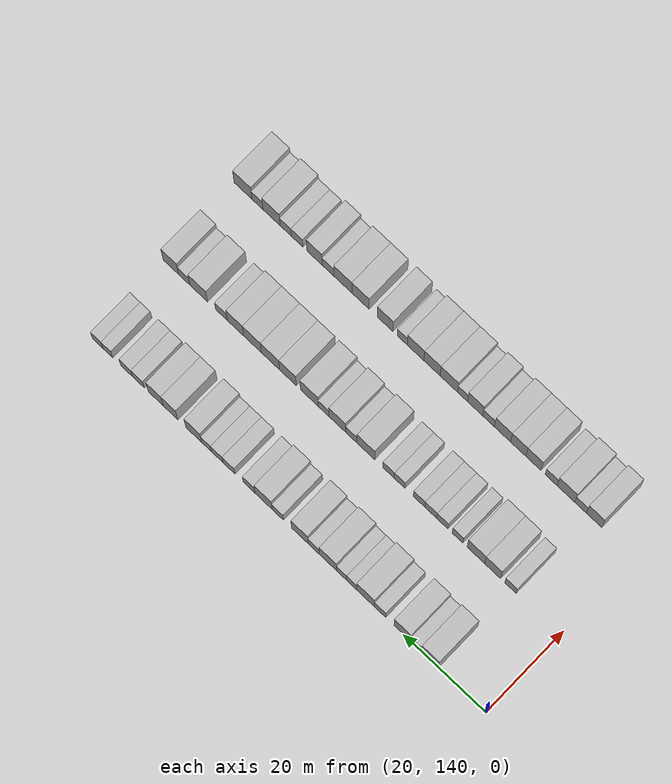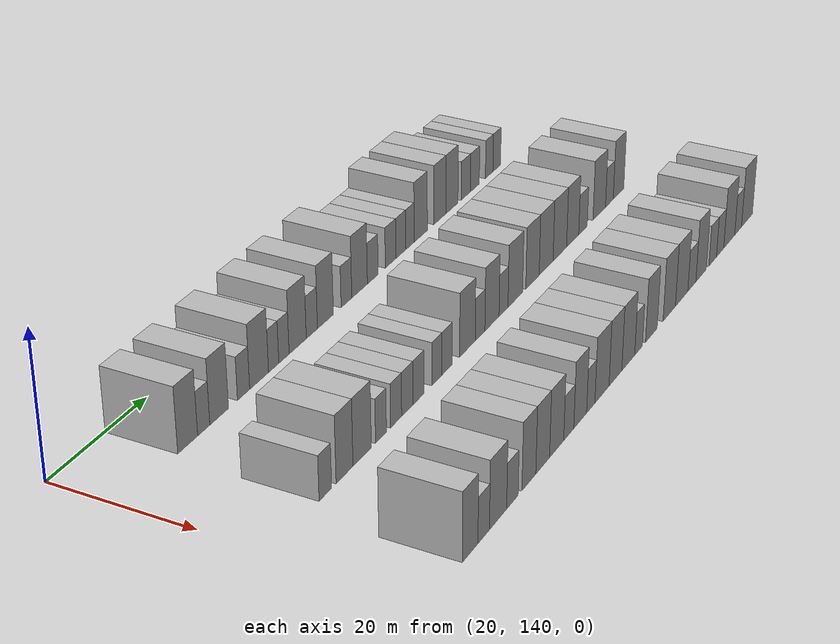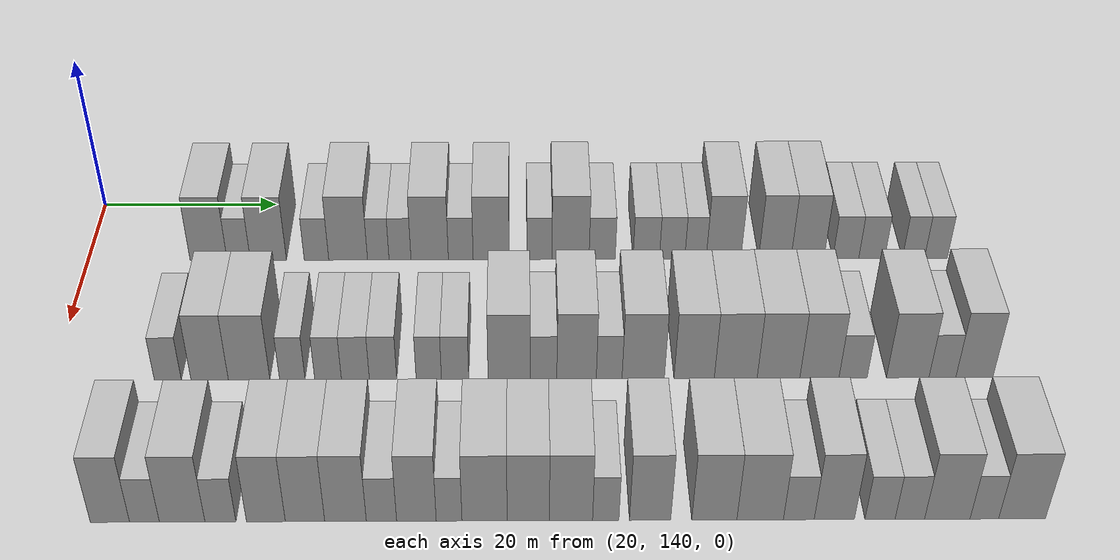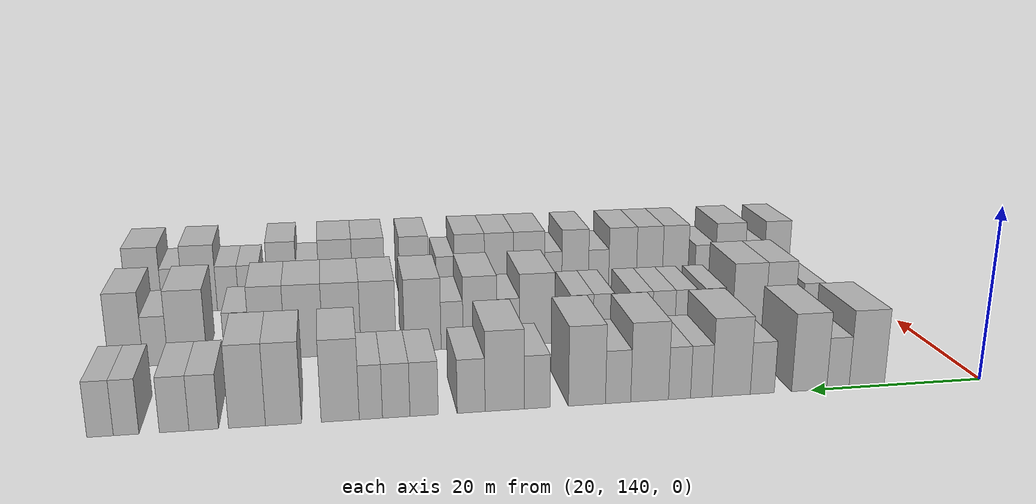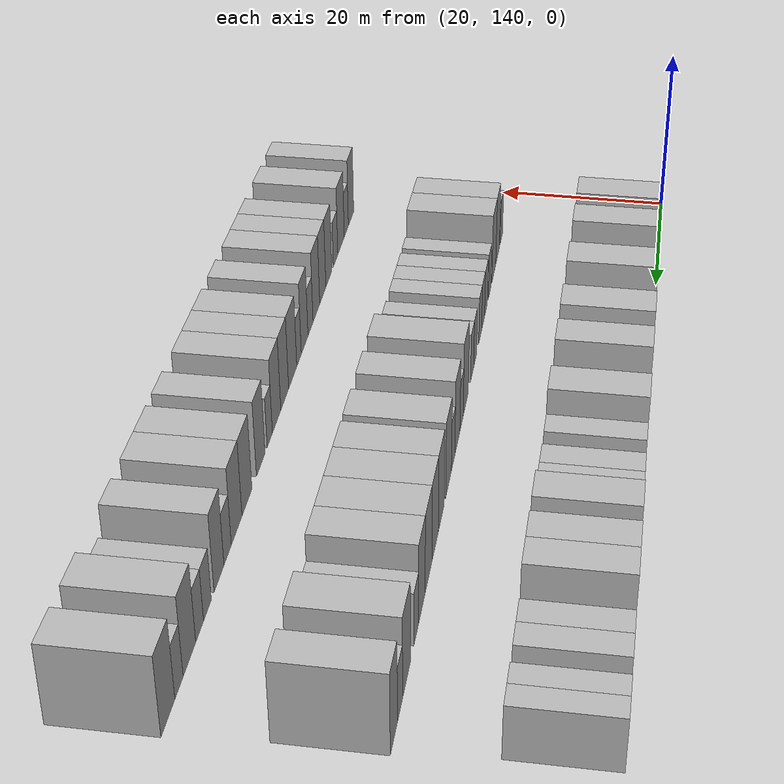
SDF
<sdf version="1.6">
 <world name="default">
  <model name="building_95">
   <static>1</static>
   <pose>25.0000 153.5208 0 0.000000 0.000000 0.000000</pose>
   <link name="link">
    <pose>0 0 4.50 0 0 0</pose>
    <collision name="collision"><geometry><box><size>10.0000 4.1597 9.0000</size></box></geometry></collision>
    <visual name="visual">
     <cast_shadows>0</cast_shadows>
     <geometry><box><size>10.0000 4.1597 9.0000</size></box></geometry>
     <material>
      <script>
       <uri>model://HANNAS_wall/materials/scripts</uri>
       <uri>model://HANNAS_wall/materials/textures</uri>
       <name>vrc/HANNAS_wall</name>
      </script>
     </material>
    </visual>
   </link>
  </model>
  <model name="building_96">
   <static>1</static>
   <pose>25.0000 156.9031 0 0.000000 0.000000 0.000000</pose>
   <link name="link">
    <pose>0 0 3.00 0 0 0</pose>
    <collision name="collision"><geometry><box><size>10.0000 2.6050 6.0000</size></box></geometry></collision>
    <visual name="visual">
     <cast_shadows>0</cast_shadows>
     <geometry><box><size>10.0000 2.6050 6.0000</size></box></geometry>
     <material>
      <script>
       <uri>model://HANNAS_wall/materials/scripts</uri>
       <uri>model://HANNAS_wall/materials/textures</uri>
       <name>vrc/HANNAS_wall</name>
      </script>
     </material>
    </visual>
   </link>
  </model>
  <model name="building_97">
   <static>1</static>
   <pose>25.0000 160.2367 0 0.000000 0.000000 0.000000</pose>
   <link name="link">
    <pose>0 0 4.50 0 0 0</pose>
    <collision name="collision"><geometry><box><size>10.0000 4.0622 9.0000</size></box></geometry></collision>
    <visual name="visual">
     <cast_shadows>0</cast_shadows>
     <geometry><box><size>10.0000 4.0622 9.0000</size></box></geometry>
     <material>
      <script>
       <uri>model://HANNAS_wall/materials/scripts</uri>
       <uri>model://HANNAS_wall/materials/textures</uri>
       <name>vrc/HANNAS_wall</name>
      </script>
     </material>
    </visual>
   </link>
  </model>
  <model name="building_98">
   <static>1</static>
   <pose>25.0000 165.6447 0 0.000000 0.000000 0.000000</pose>
   <link name="link">
    <pose>0 0 3.00 0 0 0</pose>
    <collision name="collision"><geometry><box><size>10.0000 2.7539 6.0000</size></box></geometry></collision>
    <visual name="visual">
     <cast_shadows>0</cast_shadows>
     <geometry><box><size>10.0000 2.7539 6.0000</size></box></geometry>
     <material>
      <script>
       <uri>model://HANNAS_wall/materials/scripts</uri>
       <uri>model://HANNAS_wall/materials/textures</uri>
       <name>vrc/HANNAS_wall</name>
      </script>
     </material>
    </visual>
   </link>
  </model>
  <model name="building_99">
   <static>1</static>
   <pose>25.0000 169.2007 0 0.000000 0.000000 0.000000</pose>
   <link name="link">
    <pose>0 0 4.50 0 0 0</pose>
    <collision name="collision"><geometry><box><size>10.0000 4.3581 9.0000</size></box></geometry></collision>
    <visual name="visual">
     <cast_shadows>0</cast_shadows>
     <geometry><box><size>10.0000 4.3581 9.0000</size></box></geometry>
     <material>
      <script>
       <uri>model://HANNAS_wall/materials/scripts</uri>
       <uri>model://HANNAS_wall/materials/textures</uri>
       <name>vrc/HANNAS_wall</name>
      </script>
     </material>
    </visual>
   </link>
  </model>
  <model name="building_100">
   <static>1</static>
   <pose>25.0000 172.5883 0 0.000000 0.000000 0.000000</pose>
   <link name="link">
    <pose>0 0 3.00 0 0 0</pose>
    <collision name="collision"><geometry><box><size>10.0000 2.4170 6.0000</size></box></geometry></collision>
    <visual name="visual">
     <cast_shadows>0</cast_shadows>
     <geometry><box><size>10.0000 2.4170 6.0000</size></box></geometry>
     <material>
      <script>
       <uri>model://HANNAS_wall/materials/scripts</uri>
       <uri>model://HANNAS_wall/materials/textures</uri>
       <name>vrc/HANNAS_wall</name>
      </script>
     </material>
    </visual>
   </link>
  </model>
  <model name="building_101">
   <static>1</static>
   <pose>25.0000 175.0313 0 0.000000 0.000000 0.000000</pose>
   <link name="link">
    <pose>0 0 3.00 0 0 0</pose>
    <collision name="collision"><geometry><box><size>10.0000 2.4691 6.0000</size></box></geometry></collision>
    <visual name="visual">
     <cast_shadows>0</cast_shadows>
     <geometry><box><size>10.0000 2.4691 6.0000</size></box></geometry>
     <material>
      <script>
       <uri>model://HANNAS_wall/materials/scripts</uri>
       <uri>model://HANNAS_wall/materials/textures</uri>
       <name>vrc/HANNAS_wall</name>
      </script>
     </material>
    </visual>
   </link>
  </model>
  <model name="building_102">
   <static>1</static>
   <pose>25.0000 178.3652 0 0.000000 0.000000 0.000000</pose>
   <link name="link">
    <pose>0 0 4.50 0 0 0</pose>
    <collision name="collision"><geometry><box><size>10.0000 4.1987 9.0000</size></box></geometry></collision>
    <visual name="visual">
     <cast_shadows>0</cast_shadows>
     <geometry><box><size>10.0000 4.1987 9.0000</size></box></geometry>
     <material>
      <script>
       <uri>model://HANNAS_wall/materials/scripts</uri>
       <uri>model://HANNAS_wall/materials/textures</uri>
       <name>vrc/HANNAS_wall</name>
      </script>
     </material>
    </visual>
   </link>
  </model>
  <model name="building_103">
   <static>1</static>
   <pose>25.0000 181.8591 0 0.000000 0.000000 0.000000</pose>
   <link name="link">
    <pose>0 0 3.00 0 0 0</pose>
    <collision name="collision"><geometry><box><size>10.0000 2.7890 6.0000</size></box></geometry></collision>
    <visual name="visual">
     <cast_shadows>0</cast_shadows>
     <geometry><box><size>10.0000 2.7890 6.0000</size></box></geometry>
     <material>
      <script>
       <uri>model://HANNAS_wall/materials/scripts</uri>
       <uri>model://HANNAS_wall/materials/textures</uri>
       <name>vrc/HANNAS_wall</name>
      </script>
     </material>
    </visual>
   </link>
  </model>
  <model name="building_104">
   <static>1</static>
   <pose>25.0000 185.2773 0 0.000000 0.000000 0.000000</pose>
   <link name="link">
    <pose>0 0 4.50 0 0 0</pose>
    <collision name="collision"><geometry><box><size>10.0000 4.0475 9.0000</size></box></geometry></collision>
    <visual name="visual">
     <cast_shadows>0</cast_shadows>
     <geometry><box><size>10.0000 4.0475 9.0000</size></box></geometry>
     <material>
      <script>
       <uri>model://HANNAS_wall/materials/scripts</uri>
       <uri>model://HANNAS_wall/materials/textures</uri>
       <name>vrc/HANNAS_wall</name>
      </script>
     </material>
    </visual>
   </link>
  </model>
  <model name="building_105">
   <static>1</static>
   <pose>25.0000 190.6964 0 0.000000 0.000000 0.000000</pose>
   <link name="link">
    <pose>0 0 3.00 0 0 0</pose>
    <collision name="collision"><geometry><box><size>10.0000 2.7906 6.0000</size></box></geometry></collision>
    <visual name="visual">
     <cast_shadows>0</cast_shadows>
     <geometry><box><size>10.0000 2.7906 6.0000</size></box></geometry>
     <material>
      <script>
       <uri>model://HANNAS_wall/materials/scripts</uri>
       <uri>model://HANNAS_wall/materials/textures</uri>
       <name>vrc/HANNAS_wall</name>
      </script>
     </material>
    </visual>
   </link>
  </model>
  <model name="building_106">
   <static>1</static>
   <pose>25.0000 194.1855 0 0.000000 0.000000 0.000000</pose>
   <link name="link">
    <pose>0 0 4.50 0 0 0</pose>
    <collision name="collision"><geometry><box><size>10.0000 4.1876 9.0000</size></box></geometry></collision>
    <visual name="visual">
     <cast_shadows>0</cast_shadows>
     <geometry><box><size>10.0000 4.1876 9.0000</size></box></geometry>
     <material>
      <script>
       <uri>model://HANNAS_wall/materials/scripts</uri>
       <uri>model://HANNAS_wall/materials/textures</uri>
       <name>vrc/HANNAS_wall</name>
      </script>
     </material>
    </visual>
   </link>
  </model>
  <model name="building_107">
   <static>1</static>
   <pose>25.0000 197.7550 0 0.000000 0.000000 0.000000</pose>
   <link name="link">
    <pose>0 0 3.00 0 0 0</pose>
    <collision name="collision"><geometry><box><size>10.0000 2.9514 6.0000</size></box></geometry></collision>
    <visual name="visual">
     <cast_shadows>0</cast_shadows>
     <geometry><box><size>10.0000 2.9514 6.0000</size></box></geometry>
     <material>
      <script>
       <uri>model://HANNAS_wall/materials/scripts</uri>
       <uri>model://HANNAS_wall/materials/textures</uri>
       <name>vrc/HANNAS_wall</name>
      </script>
     </material>
    </visual>
   </link>
  </model>
  <model name="building_108">
   <static>1</static>
   <pose>25.0000 202.7143 0 0.000000 0.000000 0.000000</pose>
   <link name="link">
    <pose>0 0 3.00 0 0 0</pose>
    <collision name="collision"><geometry><box><size>10.0000 2.9672 6.0000</size></box></geometry></collision>
    <visual name="visual">
     <cast_shadows>0</cast_shadows>
     <geometry><box><size>10.0000 2.9672 6.0000</size></box></geometry>
     <material>
      <script>
       <uri>model://HANNAS_wall/materials/scripts</uri>
       <uri>model://HANNAS_wall/materials/textures</uri>
       <name>vrc/HANNAS_wall</name>
      </script>
     </material>
    </visual>
   </link>
  </model>
  <model name="building_109">
   <static>1</static>
   <pose>25.0000 205.6277 0 0.000000 0.000000 0.000000</pose>
   <link name="link">
    <pose>0 0 3.00 0 0 0</pose>
    <collision name="collision"><geometry><box><size>10.0000 2.8596 6.0000</size></box></geometry></collision>
    <visual name="visual">
     <cast_shadows>0</cast_shadows>
     <geometry><box><size>10.0000 2.8596 6.0000</size></box></geometry>
     <material>
      <script>
       <uri>model://HANNAS_wall/materials/scripts</uri>
       <uri>model://HANNAS_wall/materials/textures</uri>
       <name>vrc/HANNAS_wall</name>
      </script>
     </material>
    </visual>
   </link>
  </model>
  <model name="building_110">
   <static>1</static>
   <pose>25.0000 208.2605 0 0.000000 0.000000 0.000000</pose>
   <link name="link">
    <pose>0 0 3.00 0 0 0</pose>
    <collision name="collision"><geometry><box><size>10.0000 2.4061 6.0000</size></box></geometry></collision>
    <visual name="visual">
     <cast_shadows>0</cast_shadows>
     <geometry><box><size>10.0000 2.4061 6.0000</size></box></geometry>
     <material>
      <script>
       <uri>model://HANNAS_wall/materials/scripts</uri>
       <uri>model://HANNAS_wall/materials/textures</uri>
       <name>vrc/HANNAS_wall</name>
      </script>
     </material>
    </visual>
   </link>
  </model>
  <model name="building_111">
   <static>1</static>
   <pose>25.0000 211.4178 0 0.000000 0.000000 0.000000</pose>
   <link name="link">
    <pose>0 0 4.50 0 0 0</pose>
    <collision name="collision"><geometry><box><size>10.0000 3.9084 9.0000</size></box></geometry></collision>
    <visual name="visual">
     <cast_shadows>0</cast_shadows>
     <geometry><box><size>10.0000 3.9084 9.0000</size></box></geometry>
     <material>
      <script>
       <uri>model://HANNAS_wall/materials/scripts</uri>
       <uri>model://HANNAS_wall/materials/textures</uri>
       <name>vrc/HANNAS_wall</name>
      </script>
     </material>
    </visual>
   </link>
  </model>
  <model name="building_112">
   <static>1</static>
   <pose>25.0000 217.1968 0 0.000000 0.000000 0.000000</pose>
   <link name="link">
    <pose>0 0 4.50 0 0 0</pose>
    <collision name="collision"><geometry><box><size>10.0000 3.6496 9.0000</size></box></geometry></collision>
    <visual name="visual">
     <cast_shadows>0</cast_shadows>
     <geometry><box><size>10.0000 3.6496 9.0000</size></box></geometry>
     <material>
      <script>
       <uri>model://HANNAS_wall/materials/scripts</uri>
       <uri>model://HANNAS_wall/materials/textures</uri>
       <name>vrc/HANNAS_wall</name>
      </script>
     </material>
    </visual>
   </link>
  </model>
  <model name="building_113">
   <static>1</static>
   <pose>25.0000 220.8780 0 0.000000 0.000000 0.000000</pose>
   <link name="link">
    <pose>0 0 4.50 0 0 0</pose>
    <collision name="collision"><geometry><box><size>10.0000 3.7128 9.0000</size></box></geometry></collision>
    <visual name="visual">
     <cast_shadows>0</cast_shadows>
     <geometry><box><size>10.0000 3.7128 9.0000</size></box></geometry>
     <material>
      <script>
       <uri>model://HANNAS_wall/materials/scripts</uri>
       <uri>model://HANNAS_wall/materials/textures</uri>
       <name>vrc/HANNAS_wall</name>
      </script>
     </material>
    </visual>
   </link>
  </model>
  <model name="building_114">
   <static>1</static>
   <pose>25.0000 225.1934 0 0.000000 0.000000 0.000000</pose>
   <link name="link">
    <pose>0 0 3.00 0 0 0</pose>
    <collision name="collision"><geometry><box><size>10.0000 2.9181 6.0000</size></box></geometry></collision>
    <visual name="visual">
     <cast_shadows>0</cast_shadows>
     <geometry><box><size>10.0000 2.9181 6.0000</size></box></geometry>
     <material>
      <script>
       <uri>model://HANNAS_wall/materials/scripts</uri>
       <uri>model://HANNAS_wall/materials/textures</uri>
       <name>vrc/HANNAS_wall</name>
      </script>
     </material>
    </visual>
   </link>
  </model>
  <model name="building_115">
   <static>1</static>
   <pose>25.0000 228.1130 0 0.000000 0.000000 0.000000</pose>
   <link name="link">
    <pose>0 0 3.00 0 0 0</pose>
    <collision name="collision"><geometry><box><size>10.0000 2.9211 6.0000</size></box></geometry></collision>
    <visual name="visual">
     <cast_shadows>0</cast_shadows>
     <geometry><box><size>10.0000 2.9211 6.0000</size></box></geometry>
     <material>
      <script>
       <uri>model://HANNAS_wall/materials/scripts</uri>
       <uri>model://HANNAS_wall/materials/textures</uri>
       <name>vrc/HANNAS_wall</name>
      </script>
     </material>
    </visual>
   </link>
  </model>
  <model name="building_116">
   <static>1</static>
   <pose>25.0000 232.8184 0 0.000000 0.000000 0.000000</pose>
   <link name="link">
    <pose>0 0 3.00 0 0 0</pose>
    <collision name="collision"><geometry><box><size>10.0000 2.4897 6.0000</size></box></geometry></collision>
    <visual name="visual">
     <cast_shadows>0</cast_shadows>
     <geometry><box><size>10.0000 2.4897 6.0000</size></box></geometry>
     <material>
      <script>
       <uri>model://HANNAS_wall/materials/scripts</uri>
       <uri>model://HANNAS_wall/materials/textures</uri>
       <name>vrc/HANNAS_wall</name>
      </script>
     </material>
    </visual>
   </link>
  </model>
  <model name="building_117">
   <static>1</static>
   <pose>25.0000 235.3485 0 0.000000 0.000000 0.000000</pose>
   <link name="link">
    <pose>0 0 3.00 0 0 0</pose>
    <collision name="collision"><geometry><box><size>10.0000 2.5706 6.0000</size></box></geometry></collision>
    <visual name="visual">
     <cast_shadows>0</cast_shadows>
     <geometry><box><size>10.0000 2.5706 6.0000</size></box></geometry>
     <material>
      <script>
       <uri>model://HANNAS_wall/materials/scripts</uri>
       <uri>model://HANNAS_wall/materials/textures</uri>
       <name>vrc/HANNAS_wall</name>
      </script>
     </material>
    </visual>
   </link>
  </model>
  <model name="building_203">
   <static>1</static>
   <pose>44.0000 152.0149 0 0.000000 0.000000 0.000000</pose>
   <link name="link">
    <pose>0 0 3.00 0 0 0</pose>
    <collision name="collision"><geometry><box><size>10.0000 2.7900 6.0000</size></box></geometry></collision>
    <visual name="visual">
     <cast_shadows>0</cast_shadows>
     <geometry><box><size>10.0000 2.7900 6.0000</size></box></geometry>
     <material>
      <script>
       <uri>model://HANNAS_wall/materials/scripts</uri>
       <uri>model://HANNAS_wall/materials/textures</uri>
       <name>vrc/HANNAS_wall</name>
      </script>
     </material>
    </visual>
   </link>
  </model>
  <model name="building_204">
   <static>1</static>
   <pose>44.0000 156.3422 0 0.000000 0.000000 0.000000</pose>
   <link name="link">
    <pose>0 0 4.50 0 0 0</pose>
    <collision name="collision"><geometry><box><size>10.0000 3.8646 9.0000</size></box></geometry></collision>
    <visual name="visual">
     <cast_shadows>0</cast_shadows>
     <geometry><box><size>10.0000 3.8646 9.0000</size></box></geometry>
     <material>
      <script>
       <uri>model://HANNAS_wall/materials/scripts</uri>
       <uri>model://HANNAS_wall/materials/textures</uri>
       <name>vrc/HANNAS_wall</name>
      </script>
     </material>
    </visual>
   </link>
  </model>
  <model name="building_205">
   <static>1</static>
   <pose>44.0000 160.4270 0 0.000000 0.000000 0.000000</pose>
   <link name="link">
    <pose>0 0 4.50 0 0 0</pose>
    <collision name="collision"><geometry><box><size>10.0000 4.3051 9.0000</size></box></geometry></collision>
    <visual name="visual">
     <cast_shadows>0</cast_shadows>
     <geometry><box><size>10.0000 4.3051 9.0000</size></box></geometry>
     <material>
      <script>
       <uri>model://HANNAS_wall/materials/scripts</uri>
       <uri>model://HANNAS_wall/materials/textures</uri>
       <name>vrc/HANNAS_wall</name>
      </script>
     </material>
    </visual>
   </link>
  </model>
  <model name="building_206">
   <static>1</static>
   <pose>44.0000 164.9012 0 0.000000 0.000000 0.000000</pose>
   <link name="link">
    <pose>0 0 3.00 0 0 0</pose>
    <collision name="collision"><geometry><box><size>10.0000 2.6433 6.0000</size></box></geometry></collision>
    <visual name="visual">
     <cast_shadows>0</cast_shadows>
     <geometry><box><size>10.0000 2.6433 6.0000</size></box></geometry>
     <material>
      <script>
       <uri>model://HANNAS_wall/materials/scripts</uri>
       <uri>model://HANNAS_wall/materials/textures</uri>
       <name>vrc/HANNAS_wall</name>
      </script>
     </material>
    </visual>
   </link>
  </model>
  <model name="building_207">
   <static>1</static>
   <pose>44.0000 168.6026 0 0.000000 0.000000 0.000000</pose>
   <link name="link">
    <pose>0 0 3.00 0 0 0</pose>
    <collision name="collision"><geometry><box><size>10.0000 2.7595 6.0000</size></box></geometry></collision>
    <visual name="visual">
     <cast_shadows>0</cast_shadows>
     <geometry><box><size>10.0000 2.7595 6.0000</size></box></geometry>
     <material>
      <script>
       <uri>model://HANNAS_wall/materials/scripts</uri>
       <uri>model://HANNAS_wall/materials/textures</uri>
       <name>vrc/HANNAS_wall</name>
      </script>
     </material>
    </visual>
   </link>
  </model>
  <model name="building_208">
   <static>1</static>
   <pose>44.0000 171.4312 0 0.000000 0.000000 0.000000</pose>
   <link name="link">
    <pose>0 0 3.00 0 0 0</pose>
    <collision name="collision"><geometry><box><size>10.0000 2.8979 6.0000</size></box></geometry></collision>
    <visual name="visual">
     <cast_shadows>0</cast_shadows>
     <geometry><box><size>10.0000 2.8979 6.0000</size></box></geometry>
     <material>
      <script>
       <uri>model://HANNAS_wall/materials/scripts</uri>
       <uri>model://HANNAS_wall/materials/textures</uri>
       <name>vrc/HANNAS_wall</name>
      </script>
     </material>
    </visual>
   </link>
  </model>
  <model name="building_209">
   <static>1</static>
   <pose>44.0000 174.3005 0 0.000000 0.000000 0.000000</pose>
   <link name="link">
    <pose>0 0 3.00 0 0 0</pose>
    <collision name="collision"><geometry><box><size>10.0000 2.8406 6.0000</size></box></geometry></collision>
    <visual name="visual">
     <cast_shadows>0</cast_shadows>
     <geometry><box><size>10.0000 2.8406 6.0000</size></box></geometry>
     <material>
      <script>
       <uri>model://HANNAS_wall/materials/scripts</uri>
       <uri>model://HANNAS_wall/materials/textures</uri>
       <name>vrc/HANNAS_wall</name>
      </script>
     </material>
    </visual>
   </link>
  </model>
  <model name="building_210">
   <static>1</static>
   <pose>44.0000 179.0337 0 0.000000 0.000000 0.000000</pose>
   <link name="link">
    <pose>0 0 3.00 0 0 0</pose>
    <collision name="collision"><geometry><box><size>10.0000 2.6259 6.0000</size></box></geometry></collision>
    <visual name="visual">
     <cast_shadows>0</cast_shadows>
     <geometry><box><size>10.0000 2.6259 6.0000</size></box></geometry>
     <material>
      <script>
       <uri>model://HANNAS_wall/materials/scripts</uri>
       <uri>model://HANNAS_wall/materials/textures</uri>
       <name>vrc/HANNAS_wall</name>
      </script>
     </material>
    </visual>
   </link>
  </model>
  <model name="building_211">
   <static>1</static>
   <pose>44.0000 181.7617 0 0.000000 0.000000 0.000000</pose>
   <link name="link">
    <pose>0 0 3.00 0 0 0</pose>
    <collision name="collision"><geometry><box><size>10.0000 2.8300 6.0000</size></box></geometry></collision>
    <visual name="visual">
     <cast_shadows>0</cast_shadows>
     <geometry><box><size>10.0000 2.8300 6.0000</size></box></geometry>
     <material>
      <script>
       <uri>model://HANNAS_wall/materials/scripts</uri>
       <uri>model://HANNAS_wall/materials/textures</uri>
       <name>vrc/HANNAS_wall</name>
      </script>
     </material>
    </visual>
   </link>
  </model>
  <model name="building_212">
   <static>1</static>
   <pose>44.0000 187.3529 0 0.000000 0.000000 0.000000</pose>
   <link name="link">
    <pose>0 0 4.50 0 0 0</pose>
    <collision name="collision"><geometry><box><size>10.0000 4.3524 9.0000</size></box></geometry></collision>
    <visual name="visual">
     <cast_shadows>0</cast_shadows>
     <geometry><box><size>10.0000 4.3524 9.0000</size></box></geometry>
     <material>
      <script>
       <uri>model://HANNAS_wall/materials/scripts</uri>
       <uri>model://HANNAS_wall/materials/textures</uri>
       <name>vrc/HANNAS_wall</name>
      </script>
     </material>
    </visual>
   </link>
  </model>
  <model name="building_213">
   <static>1</static>
   <pose>44.0000 190.9093 0 0.000000 0.000000 0.000000</pose>
   <link name="link">
    <pose>0 0 3.00 0 0 0</pose>
    <collision name="collision"><geometry><box><size>10.0000 2.7603 6.0000</size></box></geometry></collision>
    <visual name="visual">
     <cast_shadows>0</cast_shadows>
     <geometry><box><size>10.0000 2.7603 6.0000</size></box></geometry>
     <material>
      <script>
       <uri>model://HANNAS_wall/materials/scripts</uri>
       <uri>model://HANNAS_wall/materials/textures</uri>
       <name>vrc/HANNAS_wall</name>
      </script>
     </material>
    </visual>
   </link>
  </model>
  <model name="building_214">
   <static>1</static>
   <pose>44.0000 194.3371 0 0.000000 0.000000 0.000000</pose>
   <link name="link">
    <pose>0 0 4.50 0 0 0</pose>
    <collision name="collision"><geometry><box><size>10.0000 4.0954 9.0000</size></box></geometry></collision>
    <visual name="visual">
     <cast_shadows>0</cast_shadows>
     <geometry><box><size>10.0000 4.0954 9.0000</size></box></geometry>
     <material>
      <script>
       <uri>model://HANNAS_wall/materials/scripts</uri>
       <uri>model://HANNAS_wall/materials/textures</uri>
       <name>vrc/HANNAS_wall</name>
      </script>
     </material>
    </visual>
   </link>
  </model>
  <model name="building_215">
   <static>1</static>
   <pose>44.0000 197.7190 0 0.000000 0.000000 0.000000</pose>
   <link name="link">
    <pose>0 0 3.00 0 0 0</pose>
    <collision name="collision"><geometry><box><size>10.0000 2.6684 6.0000</size></box></geometry></collision>
    <visual name="visual">
     <cast_shadows>0</cast_shadows>
     <geometry><box><size>10.0000 2.6684 6.0000</size></box></geometry>
     <material>
      <script>
       <uri>model://HANNAS_wall/materials/scripts</uri>
       <uri>model://HANNAS_wall/materials/textures</uri>
       <name>vrc/HANNAS_wall</name>
      </script>
     </material>
    </visual>
   </link>
  </model>
  <model name="building_216">
   <static>1</static>
   <pose>44.0000 201.2500 0 0.000000 0.000000 0.000000</pose>
   <link name="link">
    <pose>0 0 4.50 0 0 0</pose>
    <collision name="collision"><geometry><box><size>10.0000 4.3935 9.0000</size></box></geometry></collision>
    <visual name="visual">
     <cast_shadows>0</cast_shadows>
     <geometry><box><size>10.0000 4.3935 9.0000</size></box></geometry>
     <material>
      <script>
       <uri>model://HANNAS_wall/materials/scripts</uri>
       <uri>model://HANNAS_wall/materials/textures</uri>
       <name>vrc/HANNAS_wall</name>
      </script>
     </material>
    </visual>
   </link>
  </model>
  <model name="building_217">
   <static>1</static>
   <pose>44.0000 206.5353 0 0.000000 0.000000 0.000000</pose>
   <link name="link">
    <pose>0 0 4.50 0 0 0</pose>
    <collision name="collision"><geometry><box><size>10.0000 4.1770 9.0000</size></box></geometry></collision>
    <visual name="visual">
     <cast_shadows>0</cast_shadows>
     <geometry><box><size>10.0000 4.1770 9.0000</size></box></geometry>
     <material>
      <script>
       <uri>model://HANNAS_wall/materials/scripts</uri>
       <uri>model://HANNAS_wall/materials/textures</uri>
       <name>vrc/HANNAS_wall</name>
      </script>
     </material>
    </visual>
   </link>
  </model>
  <model name="building_218">
   <static>1</static>
   <pose>44.0000 210.8484 0 0.000000 0.000000 0.000000</pose>
   <link name="link">
    <pose>0 0 4.50 0 0 0</pose>
    <collision name="collision"><geometry><box><size>10.0000 4.4492 9.0000</size></box></geometry></collision>
    <visual name="visual">
     <cast_shadows>0</cast_shadows>
     <geometry><box><size>10.0000 4.4492 9.0000</size></box></geometry>
     <material>
      <script>
       <uri>model://HANNAS_wall/materials/scripts</uri>
       <uri>model://HANNAS_wall/materials/textures</uri>
       <name>vrc/HANNAS_wall</name>
      </script>
     </material>
    </visual>
   </link>
  </model>
  <model name="building_219">
   <static>1</static>
   <pose>44.0000 215.2892 0 0.000000 0.000000 0.000000</pose>
   <link name="link">
    <pose>0 0 4.50 0 0 0</pose>
    <collision name="collision"><geometry><box><size>10.0000 4.4325 9.0000</size></box></geometry></collision>
    <visual name="visual">
     <cast_shadows>0</cast_shadows>
     <geometry><box><size>10.0000 4.4325 9.0000</size></box></geometry>
     <material>
      <script>
       <uri>model://HANNAS_wall/materials/scripts</uri>
       <uri>model://HANNAS_wall/materials/textures</uri>
       <name>vrc/HANNAS_wall</name>
      </script>
     </material>
    </visual>
   </link>
  </model>
  <model name="building_220">
   <static>1</static>
   <pose>44.0000 219.5357 0 0.000000 0.000000 0.000000</pose>
   <link name="link">
    <pose>0 0 4.50 0 0 0</pose>
    <collision name="collision"><geometry><box><size>10.0000 4.0604 9.0000</size></box></geometry></collision>
    <visual name="visual">
     <cast_shadows>0</cast_shadows>
     <geometry><box><size>10.0000 4.0604 9.0000</size></box></geometry>
     <material>
      <script>
       <uri>model://HANNAS_wall/materials/scripts</uri>
       <uri>model://HANNAS_wall/materials/textures</uri>
       <name>vrc/HANNAS_wall</name>
      </script>
     </material>
    </visual>
   </link>
  </model>
  <model name="building_221">
   <static>1</static>
   <pose>44.0000 223.0277 0 0.000000 0.000000 0.000000</pose>
   <link name="link">
    <pose>0 0 3.00 0 0 0</pose>
    <collision name="collision"><geometry><box><size>10.0000 2.9235 6.0000</size></box></geometry></collision>
    <visual name="visual">
     <cast_shadows>0</cast_shadows>
     <geometry><box><size>10.0000 2.9235 6.0000</size></box></geometry>
     <material>
      <script>
       <uri>model://HANNAS_wall/materials/scripts</uri>
       <uri>model://HANNAS_wall/materials/textures</uri>
       <name>vrc/HANNAS_wall</name>
      </script>
     </material>
    </visual>
   </link>
  </model>
  <model name="building_222">
   <static>1</static>
   <pose>44.0000 228.6987 0 0.000000 0.000000 0.000000</pose>
   <link name="link">
    <pose>0 0 4.50 0 0 0</pose>
    <collision name="collision"><geometry><box><size>10.0000 4.4185 9.0000</size></box></geometry></collision>
    <visual name="visual">
     <cast_shadows>0</cast_shadows>
     <geometry><box><size>10.0000 4.4185 9.0000</size></box></geometry>
     <material>
      <script>
       <uri>model://HANNAS_wall/materials/scripts</uri>
       <uri>model://HANNAS_wall/materials/textures</uri>
       <name>vrc/HANNAS_wall</name>
      </script>
     </material>
    </visual>
   </link>
  </model>
  <model name="building_223">
   <static>1</static>
   <pose>44.0000 232.3027 0 0.000000 0.000000 0.000000</pose>
   <link name="link">
    <pose>0 0 3.00 0 0 0</pose>
    <collision name="collision"><geometry><box><size>10.0000 2.7896 6.0000</size></box></geometry></collision>
    <visual name="visual">
     <cast_shadows>0</cast_shadows>
     <geometry><box><size>10.0000 2.7896 6.0000</size></box></geometry>
     <material>
      <script>
       <uri>model://HANNAS_wall/materials/scripts</uri>
       <uri>model://HANNAS_wall/materials/textures</uri>
       <name>vrc/HANNAS_wall</name>
      </script>
     </material>
    </visual>
   </link>
  </model>
  <model name="building_224">
   <static>1</static>
   <pose>44.0000 235.6227 0 0.000000 0.000000 0.000000</pose>
   <link name="link">
    <pose>0 0 4.50 0 0 0</pose>
    <collision name="collision"><geometry><box><size>10.0000 3.8504 9.0000</size></box></geometry></collision>
    <visual name="visual">
     <cast_shadows>0</cast_shadows>
     <geometry><box><size>10.0000 3.8504 9.0000</size></box></geometry>
     <material>
      <script>
       <uri>model://HANNAS_wall/materials/scripts</uri>
       <uri>model://HANNAS_wall/materials/textures</uri>
       <name>vrc/HANNAS_wall</name>
      </script>
     </material>
    </visual>
   </link>
  </model>
  <model name="building_320">
   <static>1</static>
   <pose>63.0000 149.6138 0 0.000000 0.000000 0.000000</pose>
   <link name="link">
    <pose>0 0 4.50 0 0 0</pose>
    <collision name="collision"><geometry><box><size>10.0000 3.7176 9.0000</size></box></geometry></collision>
    <visual name="visual">
     <cast_shadows>0</cast_shadows>
     <geometry><box><size>10.0000 3.7176 9.0000</size></box></geometry>
     <material>
      <script>
       <uri>model://HANNAS_wall/materials/scripts</uri>
       <uri>model://HANNAS_wall/materials/textures</uri>
       <name>vrc/HANNAS_wall</name>
      </script>
     </material>
    </visual>
   </link>
  </model>
  <model name="building_321">
   <static>1</static>
   <pose>63.0000 152.8809 0 0.000000 0.000000 0.000000</pose>
   <link name="link">
    <pose>0 0 3.00 0 0 0</pose>
    <collision name="collision"><geometry><box><size>10.0000 2.8167 6.0000</size></box></geometry></collision>
    <visual name="visual">
     <cast_shadows>0</cast_shadows>
     <geometry><box><size>10.0000 2.8167 6.0000</size></box></geometry>
     <material>
      <script>
       <uri>model://HANNAS_wall/materials/scripts</uri>
       <uri>model://HANNAS_wall/materials/textures</uri>
       <name>vrc/HANNAS_wall</name>
      </script>
     </material>
    </visual>
   </link>
  </model>
  <model name="building_322">
   <static>1</static>
   <pose>63.0000 156.4465 0 0.000000 0.000000 0.000000</pose>
   <link name="link">
    <pose>0 0 4.50 0 0 0</pose>
    <collision name="collision"><geometry><box><size>10.0000 4.3143 9.0000</size></box></geometry></collision>
    <visual name="visual">
     <cast_shadows>0</cast_shadows>
     <geometry><box><size>10.0000 4.3143 9.0000</size></box></geometry>
     <material>
      <script>
       <uri>model://HANNAS_wall/materials/scripts</uri>
       <uri>model://HANNAS_wall/materials/textures</uri>
       <name>vrc/HANNAS_wall</name>
      </script>
     </material>
    </visual>
   </link>
  </model>
  <model name="building_323">
   <static>1</static>
   <pose>63.0000 160.0696 0 0.000000 0.000000 0.000000</pose>
   <link name="link">
    <pose>0 0 3.00 0 0 0</pose>
    <collision name="collision"><geometry><box><size>10.0000 2.9320 6.0000</size></box></geometry></collision>
    <visual name="visual">
     <cast_shadows>0</cast_shadows>
     <geometry><box><size>10.0000 2.9320 6.0000</size></box></geometry>
     <material>
      <script>
       <uri>model://HANNAS_wall/materials/scripts</uri>
       <uri>model://HANNAS_wall/materials/textures</uri>
       <name>vrc/HANNAS_wall</name>
      </script>
     </material>
    </visual>
   </link>
  </model>
  <model name="building_324">
   <static>1</static>
   <pose>63.0000 164.3763 0 0.000000 0.000000 0.000000</pose>
   <link name="link">
    <pose>0 0 4.50 0 0 0</pose>
    <collision name="collision"><geometry><box><size>10.0000 3.6815 9.0000</size></box></geometry></collision>
    <visual name="visual">
     <cast_shadows>0</cast_shadows>
     <geometry><box><size>10.0000 3.6815 9.0000</size></box></geometry>
     <material>
      <script>
       <uri>model://HANNAS_wall/materials/scripts</uri>
       <uri>model://HANNAS_wall/materials/textures</uri>
       <name>vrc/HANNAS_wall</name>
      </script>
     </material>
    </visual>
   </link>
  </model>
  <model name="building_325">
   <static>1</static>
   <pose>63.0000 168.0820 0 0.000000 0.000000 0.000000</pose>
   <link name="link">
    <pose>0 0 4.50 0 0 0</pose>
    <collision name="collision"><geometry><box><size>10.0000 3.7297 9.0000</size></box></geometry></collision>
    <visual name="visual">
     <cast_shadows>0</cast_shadows>
     <geometry><box><size>10.0000 3.7297 9.0000</size></box></geometry>
     <material>
      <script>
       <uri>model://HANNAS_wall/materials/scripts</uri>
       <uri>model://HANNAS_wall/materials/textures</uri>
       <name>vrc/HANNAS_wall</name>
      </script>
     </material>
    </visual>
   </link>
  </model>
  <model name="building_326">
   <static>1</static>
   <pose>63.0000 171.9167 0 0.000000 0.000000 0.000000</pose>
   <link name="link">
    <pose>0 0 4.50 0 0 0</pose>
    <collision name="collision"><geometry><box><size>10.0000 3.9397 9.0000</size></box></geometry></collision>
    <visual name="visual">
     <cast_shadows>0</cast_shadows>
     <geometry><box><size>10.0000 3.9397 9.0000</size></box></geometry>
     <material>
      <script>
       <uri>model://HANNAS_wall/materials/scripts</uri>
       <uri>model://HANNAS_wall/materials/textures</uri>
       <name>vrc/HANNAS_wall</name>
      </script>
     </material>
    </visual>
   </link>
  </model>
  <model name="building_327">
   <static>1</static>
   <pose>63.0000 175.3220 0 0.000000 0.000000 0.000000</pose>
   <link name="link">
    <pose>0 0 3.00 0 0 0</pose>
    <collision name="collision"><geometry><box><size>10.0000 2.8710 6.0000</size></box></geometry></collision>
    <visual name="visual">
     <cast_shadows>0</cast_shadows>
     <geometry><box><size>10.0000 2.8710 6.0000</size></box></geometry>
     <material>
      <script>
       <uri>model://HANNAS_wall/materials/scripts</uri>
       <uri>model://HANNAS_wall/materials/textures</uri>
       <name>vrc/HANNAS_wall</name>
      </script>
     </material>
    </visual>
   </link>
  </model>
  <model name="building_328">
   <static>1</static>
   <pose>63.0000 178.6308 0 0.000000 0.000000 0.000000</pose>
   <link name="link">
    <pose>0 0 4.50 0 0 0</pose>
    <collision name="collision"><geometry><box><size>10.0000 3.7467 9.0000</size></box></geometry></collision>
    <visual name="visual">
     <cast_shadows>0</cast_shadows>
     <geometry><box><size>10.0000 3.7467 9.0000</size></box></geometry>
     <material>
      <script>
       <uri>model://HANNAS_wall/materials/scripts</uri>
       <uri>model://HANNAS_wall/materials/textures</uri>
       <name>vrc/HANNAS_wall</name>
      </script>
     </material>
    </visual>
   </link>
  </model>
  <model name="building_329">
   <static>1</static>
   <pose>63.0000 181.7263 0 0.000000 0.000000 0.000000</pose>
   <link name="link">
    <pose>0 0 3.00 0 0 0</pose>
    <collision name="collision"><geometry><box><size>10.0000 2.4442 6.0000</size></box></geometry></collision>
    <visual name="visual">
     <cast_shadows>0</cast_shadows>
     <geometry><box><size>10.0000 2.4442 6.0000</size></box></geometry>
     <material>
      <script>
       <uri>model://HANNAS_wall/materials/scripts</uri>
       <uri>model://HANNAS_wall/materials/textures</uri>
       <name>vrc/HANNAS_wall</name>
      </script>
     </material>
    </visual>
   </link>
  </model>
  <model name="building_330">
   <static>1</static>
   <pose>63.0000 185.0896 0 0.000000 0.000000 0.000000</pose>
   <link name="link">
    <pose>0 0 4.50 0 0 0</pose>
    <collision name="collision"><geometry><box><size>10.0000 4.2824 9.0000</size></box></geometry></collision>
    <visual name="visual">
     <cast_shadows>0</cast_shadows>
     <geometry><box><size>10.0000 4.2824 9.0000</size></box></geometry>
     <material>
      <script>
       <uri>model://HANNAS_wall/materials/scripts</uri>
       <uri>model://HANNAS_wall/materials/textures</uri>
       <name>vrc/HANNAS_wall</name>
      </script>
     </material>
    </visual>
   </link>
  </model>
  <model name="building_331">
   <static>1</static>
   <pose>63.0000 189.2210 0 0.000000 0.000000 0.000000</pose>
   <link name="link">
    <pose>0 0 4.50 0 0 0</pose>
    <collision name="collision"><geometry><box><size>10.0000 3.9803 9.0000</size></box></geometry></collision>
    <visual name="visual">
     <cast_shadows>0</cast_shadows>
     <geometry><box><size>10.0000 3.9803 9.0000</size></box></geometry>
     <material>
      <script>
       <uri>model://HANNAS_wall/materials/scripts</uri>
       <uri>model://HANNAS_wall/materials/textures</uri>
       <name>vrc/HANNAS_wall</name>
      </script>
     </material>
    </visual>
   </link>
  </model>
  <model name="building_332">
   <static>1</static>
   <pose>63.0000 193.2677 0 0.000000 0.000000 0.000000</pose>
   <link name="link">
    <pose>0 0 4.50 0 0 0</pose>
    <collision name="collision"><geometry><box><size>10.0000 4.1132 9.0000</size></box></geometry></collision>
    <visual name="visual">
     <cast_shadows>0</cast_shadows>
     <geometry><box><size>10.0000 4.1132 9.0000</size></box></geometry>
     <material>
      <script>
       <uri>model://HANNAS_wall/materials/scripts</uri>
       <uri>model://HANNAS_wall/materials/textures</uri>
       <name>vrc/HANNAS_wall</name>
      </script>
     </material>
    </visual>
   </link>
  </model>
  <model name="building_333">
   <static>1</static>
   <pose>63.0000 196.5720 0 0.000000 0.000000 0.000000</pose>
   <link name="link">
    <pose>0 0 3.00 0 0 0</pose>
    <collision name="collision"><geometry><box><size>10.0000 2.4954 6.0000</size></box></geometry></collision>
    <visual name="visual">
     <cast_shadows>0</cast_shadows>
     <geometry><box><size>10.0000 2.4954 6.0000</size></box></geometry>
     <material>
      <script>
       <uri>model://HANNAS_wall/materials/scripts</uri>
       <uri>model://HANNAS_wall/materials/textures</uri>
       <name>vrc/HANNAS_wall</name>
      </script>
     </material>
    </visual>
   </link>
  </model>
  <model name="building_334">
   <static>1</static>
   <pose>63.0000 200.7766 0 0.000000 0.000000 0.000000</pose>
   <link name="link">
    <pose>0 0 4.50 0 0 0</pose>
    <collision name="collision"><geometry><box><size>10.0000 3.9138 9.0000</size></box></geometry></collision>
    <visual name="visual">
     <cast_shadows>0</cast_shadows>
     <geometry><box><size>10.0000 3.9138 9.0000</size></box></geometry>
     <material>
      <script>
       <uri>model://HANNAS_wall/materials/scripts</uri>
       <uri>model://HANNAS_wall/materials/textures</uri>
       <name>vrc/HANNAS_wall</name>
      </script>
     </material>
    </visual>
   </link>
  </model>
  <model name="building_335">
   <static>1</static>
   <pose>63.0000 206.8737 0 0.000000 0.000000 0.000000</pose>
   <link name="link">
    <pose>0 0 4.50 0 0 0</pose>
    <collision name="collision"><geometry><box><size>10.0000 4.2805 9.0000</size></box></geometry></collision>
    <visual name="visual">
     <cast_shadows>0</cast_shadows>
     <geometry><box><size>10.0000 4.2805 9.0000</size></box></geometry>
     <material>
      <script>
       <uri>model://HANNAS_wall/materials/scripts</uri>
       <uri>model://HANNAS_wall/materials/textures</uri>
       <name>vrc/HANNAS_wall</name>
      </script>
     </material>
    </visual>
   </link>
  </model>
  <model name="building_336">
   <static>1</static>
   <pose>63.0000 211.2199 0 0.000000 0.000000 0.000000</pose>
   <link name="link">
    <pose>0 0 4.50 0 0 0</pose>
    <collision name="collision"><geometry><box><size>10.0000 4.4118 9.0000</size></box></geometry></collision>
    <visual name="visual">
     <cast_shadows>0</cast_shadows>
     <geometry><box><size>10.0000 4.4118 9.0000</size></box></geometry>
     <material>
      <script>
       <uri>model://HANNAS_wall/materials/scripts</uri>
       <uri>model://HANNAS_wall/materials/textures</uri>
       <name>vrc/HANNAS_wall</name>
      </script>
     </material>
    </visual>
   </link>
  </model>
  <model name="building_337">
   <static>1</static>
   <pose>63.0000 214.8866 0 0.000000 0.000000 0.000000</pose>
   <link name="link">
    <pose>0 0 3.00 0 0 0</pose>
    <collision name="collision"><geometry><box><size>10.0000 2.9216 6.0000</size></box></geometry></collision>
    <visual name="visual">
     <cast_shadows>0</cast_shadows>
     <geometry><box><size>10.0000 2.9216 6.0000</size></box></geometry>
     <material>
      <script>
       <uri>model://HANNAS_wall/materials/scripts</uri>
       <uri>model://HANNAS_wall/materials/textures</uri>
       <name>vrc/HANNAS_wall</name>
      </script>
     </material>
    </visual>
   </link>
  </model>
  <model name="building_338">
   <static>1</static>
   <pose>63.0000 218.2589 0 0.000000 0.000000 0.000000</pose>
   <link name="link">
    <pose>0 0 4.50 0 0 0</pose>
    <collision name="collision"><geometry><box><size>10.0000 3.8231 9.0000</size></box></geometry></collision>
    <visual name="visual">
     <cast_shadows>0</cast_shadows>
     <geometry><box><size>10.0000 3.8231 9.0000</size></box></geometry>
     <material>
      <script>
       <uri>model://HANNAS_wall/materials/scripts</uri>
       <uri>model://HANNAS_wall/materials/textures</uri>
       <name>vrc/HANNAS_wall</name>
      </script>
     </material>
    </visual>
   </link>
  </model>
  <model name="building_339">
   <static>1</static>
   <pose>63.0000 222.6005 0 0.000000 0.000000 0.000000</pose>
   <link name="link">
    <pose>0 0 3.00 0 0 0</pose>
    <collision name="collision"><geometry><box><size>10.0000 2.8600 6.0000</size></box></geometry></collision>
    <visual name="visual">
     <cast_shadows>0</cast_shadows>
     <geometry><box><size>10.0000 2.8600 6.0000</size></box></geometry>
     <material>
      <script>
       <uri>model://HANNAS_wall/materials/scripts</uri>
       <uri>model://HANNAS_wall/materials/textures</uri>
       <name>vrc/HANNAS_wall</name>
      </script>
     </material>
    </visual>
   </link>
  </model>
  <model name="building_340">
   <static>1</static>
   <pose>63.0000 225.4292 0 0.000000 0.000000 0.000000</pose>
   <link name="link">
    <pose>0 0 3.00 0 0 0</pose>
    <collision name="collision"><geometry><box><size>10.0000 2.7974 6.0000</size></box></geometry></collision>
    <visual name="visual">
     <cast_shadows>0</cast_shadows>
     <geometry><box><size>10.0000 2.7974 6.0000</size></box></geometry>
     <material>
      <script>
       <uri>model://HANNAS_wall/materials/scripts</uri>
       <uri>model://HANNAS_wall/materials/textures</uri>
       <name>vrc/HANNAS_wall</name>
      </script>
     </material>
    </visual>
   </link>
  </model>
  <model name="building_341">
   <static>1</static>
   <pose>63.0000 228.9877 0 0.000000 0.000000 0.000000</pose>
   <link name="link">
    <pose>0 0 4.50 0 0 0</pose>
    <collision name="collision"><geometry><box><size>10.0000 4.3197 9.0000</size></box></geometry></collision>
    <visual name="visual">
     <cast_shadows>0</cast_shadows>
     <geometry><box><size>10.0000 4.3197 9.0000</size></box></geometry>
     <material>
      <script>
       <uri>model://HANNAS_wall/materials/scripts</uri>
       <uri>model://HANNAS_wall/materials/textures</uri>
       <name>vrc/HANNAS_wall</name>
      </script>
     </material>
    </visual>
   </link>
  </model>
  <model name="building_342">
   <static>1</static>
   <pose>63.0000 232.5032 0 0.000000 0.000000 0.000000</pose>
   <link name="link">
    <pose>0 0 3.00 0 0 0</pose>
    <collision name="collision"><geometry><box><size>10.0000 2.7114 6.0000</size></box></geometry></collision>
    <visual name="visual">
     <cast_shadows>0</cast_shadows>
     <geometry><box><size>10.0000 2.7114 6.0000</size></box></geometry>
     <material>
      <script>
       <uri>model://HANNAS_wall/materials/scripts</uri>
       <uri>model://HANNAS_wall/materials/textures</uri>
       <name>vrc/HANNAS_wall</name>
      </script>
     </material>
    </visual>
   </link>
  </model>
  <model name="building_343">
   <static>1</static>
   <pose>63.0000 236.0850 0 0.000000 0.000000 0.000000</pose>
   <link name="link">
    <pose>0 0 4.50 0 0 0</pose>
    <collision name="collision"><geometry><box><size>10.0000 4.4522 9.0000</size></box></geometry></collision>
    <visual name="visual">
     <cast_shadows>0</cast_shadows>
     <geometry><box><size>10.0000 4.4522 9.0000</size></box></geometry>
     <material>
      <script>
       <uri>model://HANNAS_wall/materials/scripts</uri>
       <uri>model://HANNAS_wall/materials/textures</uri>
       <name>vrc/HANNAS_wall</name>
      </script>
     </material>
    </visual>
   </link>
  </model>
 </world>
</sdf>
